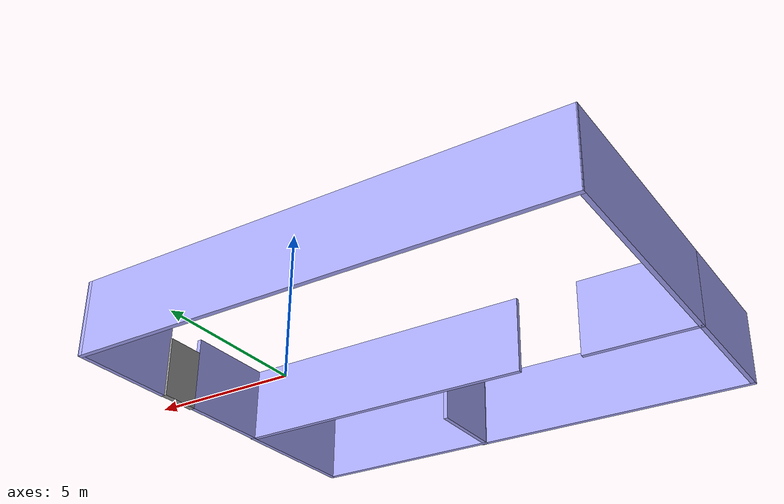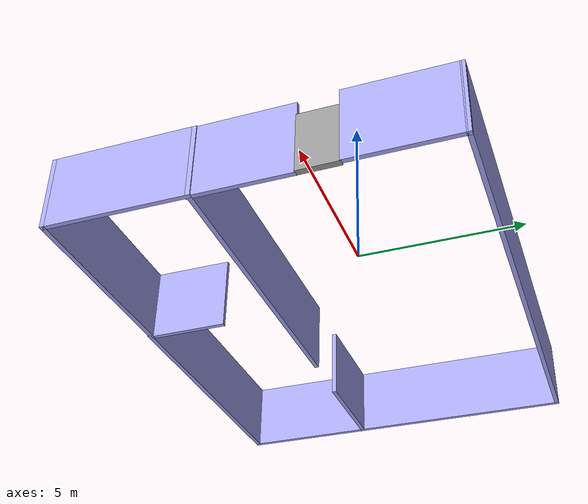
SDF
<?xml version='1.0'?>
<sdf version='1.6'>
  <model name='house'>
    <pose frame=''>-3.84093 -1.95381 0 0 -0 0</pose>
    <link name='Door_3'>
      <collision name='Door_3_Collision'>
        <geometry>
          <box>
            <size>1.30997 0.2 2</size>
          </box>
        </geometry>
        <pose frame=''>0 0 1 0 -0 0</pose>
      </collision>
      <visual name='Door_3_Visual'>
        <pose frame=''>0 0 1 0 -0 0</pose>
        <geometry>
          <box>
            <size>1.30997 0.2 2</size>
          </box>
        </geometry>
        <material>
          <script>
            <uri>file://media/materials/scripts/gazebo.material</uri>
            <name>Gazebo/Grey</name>
          </script>
        </material>
      </visual>
      <pose frame=''>8.0389 2.18562 0 0 -0 1.56918</pose>
    </link>
    <link name='Wall_0'>
      <collision name='Wall_0_Collision'>
        <geometry>
          <box>
            <size>8 0.15 2.5</size>
          </box>
        </geometry>
        <pose frame=''>0 0 1.25 0 -0 0</pose>
      </collision>
      <visual name='Wall_0_Visual'>
        <pose frame=''>0 0 1.25 0 -0 0</pose>
        <geometry>
          <box>
            <size>8 0.15 2.5</size>
          </box>
        </geometry>
        <material>
          <script>
            <uri>file://media/materials/scripts/gazebo.material</uri>
            <name>Gazebo/Grey</name>
          </script>
          <ambient>0.666667 0.666667 1 1</ambient>
        </material>
        <meta>
          <layer>0</layer>
        </meta>
      </visual>
      <pose frame=''>-8.09112 2.29597 0 0 0 -1.5708</pose>
    </link>
    <link name='Wall_10'>
      <collision name='Wall_10_Collision'>
        <geometry>
          <box>
            <size>4.75 0.15 2.5</size>
          </box>
        </geometry>
        <pose frame=''>0 0 1.25 0 -0 0</pose>
      </collision>
      <visual name='Wall_10_Visual'>
        <pose frame=''>0 0 1.25 0 -0 0</pose>
        <geometry>
          <box>
            <size>4.75 0.15 2.5</size>
          </box>
        </geometry>
        <material>
          <script>
            <uri>file://media/materials/scripts/gazebo.material</uri>
            <name>Gazebo/Grey</name>
          </script>
          <ambient>0.666667 0.666667 1 1</ambient>
        </material>
        <meta>
          <layer>0</layer>
        </meta>
      </visual>
      <pose frame=''>8.04306 -3.88895 0 0 0 -1.57074</pose>
    </link>
    <link name='Wall_11'>
      <collision name='Wall_11_Collision'>
        <geometry>
          <box>
            <size>6.75 0.15 2.5</size>
          </box>
        </geometry>
        <pose frame=''>0 0 1.25 0 -0 0</pose>
      </collision>
      <visual name='Wall_11_Visual'>
        <pose frame=''>0 0 1.25 0 -0 0</pose>
        <geometry>
          <box>
            <size>6.75 0.15 2.5</size>
          </box>
        </geometry>
        <material>
          <script>
            <uri>file://media/materials/scripts/gazebo.material</uri>
            <name>Gazebo/Grey</name>
          </script>
          <ambient>0.666667 0.666667 1 1</ambient>
        </material>
        <meta>
          <layer>0</layer>
        </meta>
      </visual>
      <pose frame=''>4.7432 -6.18871 0 0 -0 3.14159</pose>
    </link>
    <link name='Wall_12'>
      <collision name='Wall_12_Collision'>
        <geometry>
          <box>
            <size>2.75 0.15 2.5</size>
          </box>
        </geometry>
        <pose frame=''>0 0 1.25 0 -0 0</pose>
      </collision>
      <visual name='Wall_12_Visual'>
        <pose frame=''>0 0 1.25 0 -0 0</pose>
        <geometry>
          <box>
            <size>2.75 0.15 2.5</size>
          </box>
        </geometry>
        <material>
          <script>
            <uri>file://media/materials/scripts/gazebo.material</uri>
            <name>Gazebo/Grey</name>
          </script>
          <ambient>0.666667 0.666667 1 1</ambient>
        </material>
        <meta>
          <layer>0</layer>
        </meta>
      </visual>
      <pose frame=''>1.4432 -4.88871 0 0 -0 1.5708</pose>
    </link>
    <link name='Wall_14'>
      <collision name='Wall_14_Collision'>
        <geometry>
          <box>
            <size>4.75 0.15 2.5</size>
          </box>
        </geometry>
        <pose frame=''>0 0 1.25 0 -0 0</pose>
      </collision>
      <visual name='Wall_14_Visual'>
        <pose frame=''>0 0 1.25 0 -0 0</pose>
        <geometry>
          <box>
            <size>4.75 0.15 2.5</size>
          </box>
        </geometry>
        <material>
          <script>
            <uri>file://media/materials/scripts/gazebo.material</uri>
            <name>Gazebo/Grey</name>
          </script>
          <ambient>0.666667 0.666667 1 1</ambient>
        </material>
        <meta>
          <layer>0</layer>
        </meta>
      </visual>
      <pose frame=''>-8.09112 -3.92903 0 0 0 -1.5708</pose>
    </link>
    <link name='Wall_15'>
      <collision name='Wall_15_Collision'>
        <geometry>
          <box>
            <size>9.75 0.15 2.5</size>
          </box>
        </geometry>
        <pose frame=''>0 0 1.25 0 -0 0</pose>
      </collision>
      <visual name='Wall_15_Visual'>
        <pose frame=''>0 0 1.25 0 -0 0</pose>
        <geometry>
          <box>
            <size>9.75 0.15 2.5</size>
          </box>
        </geometry>
        <material>
          <script>
            <uri>file://media/materials/scripts/gazebo.material</uri>
            <name>Gazebo/Grey</name>
          </script>
          <ambient>0.666667 0.666667 1 1</ambient>
        </material>
        <meta>
          <layer>0</layer>
        </meta>
      </visual>
      <pose frame=''>-3.29112 -6.22903 0 0 -0 0</pose>
    </link>
    <link name='Wall_2'>
      <collision name='Wall_2_Collision'>
        <geometry>
          <box>
            <size>3.25 0.15 2.5</size>
          </box>
        </geometry>
        <pose frame=''>0 0 1.25 0 -0 0</pose>
      </collision>
      <visual name='Wall_2_Visual'>
        <pose frame=''>0 0 1.25 0 -0 0</pose>
        <geometry>
          <box>
            <size>3.25 0.15 2.5</size>
          </box>
        </geometry>
        <material>
          <script>
            <uri>file://media/materials/scripts/gazebo.material</uri>
            <name>Gazebo/Grey</name>
          </script>
          <ambient>0.666667 0.666667 1 1</ambient>
        </material>
        <meta>
          <layer>0</layer>
        </meta>
      </visual>
      <pose frame=''>8.00888 -0.079027 0 0 -0 1.5708</pose>
    </link>
    <link name='Wall_4'>
      <collision name='Wall_4_Collision'>
        <geometry>
          <box>
            <size>3.5 0.15 2.5</size>
          </box>
        </geometry>
        <pose frame=''>0 0 1.25 0 -0 0</pose>
      </collision>
      <visual name='Wall_4_Visual'>
        <pose frame=''>0 0 1.25 0 -0 0</pose>
        <geometry>
          <box>
            <size>3.5 0.15 2.5</size>
          </box>
        </geometry>
        <material>
          <script>
            <uri>file://media/materials/scripts/gazebo.material</uri>
            <name>Gazebo/Grey</name>
          </script>
          <ambient>0.666667 0.666667 1 1</ambient>
        </material>
        <meta>
          <layer>0</layer>
        </meta>
      </visual>
      <pose frame=''>8.09112 4.55399 0 0 -0 1.5708</pose>
    </link>
    <link name='Wall_5'>
      <collision name='Wall_5_Collision'>
        <geometry>
          <box>
            <size>16.3322 0.15 2.5</size>
          </box>
        </geometry>
        <pose frame=''>0 0 1.25 0 -0 0</pose>
      </collision>
      <visual name='Wall_5_Visual'>
        <pose frame=''>0 0 1.25 0 -0 0</pose>
        <geometry>
          <box>
            <size>16.3322 0.15 2.5</size>
          </box>
        </geometry>
        <material>
          <script>
            <uri>file://media/materials/scripts/gazebo.material</uri>
            <name>Gazebo/Grey</name>
          </script>
          <ambient>0.666667 0.666667 1 1</ambient>
        </material>
        <meta>
          <layer>0</layer>
        </meta>
      </visual>
      <pose frame=''>0 6.22498 0 0 0 -3.1411</pose>
    </link>
    <link name='Wall_7'>
      <collision name='Wall_7_Collision'>
        <geometry>
          <box>
            <size>3.75 0.15 2.5</size>
          </box>
        </geometry>
        <pose frame=''>0 0 1.25 0 -0 0</pose>
      </collision>
      <visual name='Wall_7_Visual'>
        <pose frame=''>0 0 1.25 0 -0 0</pose>
        <geometry>
          <box>
            <size>3.75 0.15 2.5</size>
          </box>
        </geometry>
        <material>
          <script>
            <uri>file://media/materials/scripts/gazebo.material</uri>
            <name>Gazebo/Grey</name>
          </script>
          <ambient>0.666667 0.666667 1 1</ambient>
        </material>
        <meta>
          <layer>0</layer>
        </meta>
      </visual>
      <pose frame=''>-6.29111 -1.62903 0 0 -0 0</pose>
    </link>
    <link name='Wall_9'>
      <collision name='Wall_9_Collision'>
        <geometry>
          <box>
            <size>10.5003 0.15 2.5</size>
          </box>
        </geometry>
        <pose frame=''>0 0 1.25 0 -0 0</pose>
      </collision>
      <visual name='Wall_9_Visual'>
        <pose frame=''>0 0 1.25 0 -0 0</pose>
        <geometry>
          <box>
            <size>10.5003 0.15 2.5</size>
          </box>
        </geometry>
        <material>
          <script>
            <uri>file://media/materials/scripts/gazebo.material</uri>
            <name>Gazebo/Grey</name>
          </script>
          <ambient>0.666667 0.666667 1 1</ambient>
        </material>
        <meta>
          <layer>0</layer>
        </meta>
      </visual>
      <pose frame=''>2.86793 -1.58919 0 0 -0 0</pose>
    </link>
    <static>1</static>
  </model>
</sdf>
